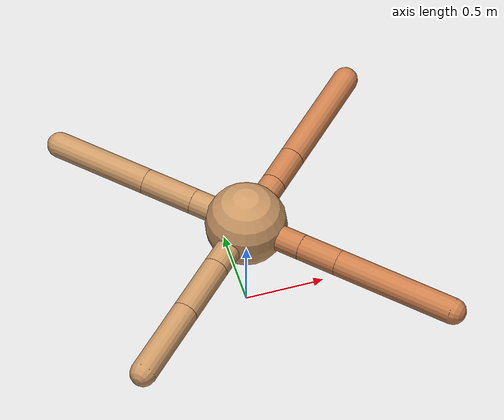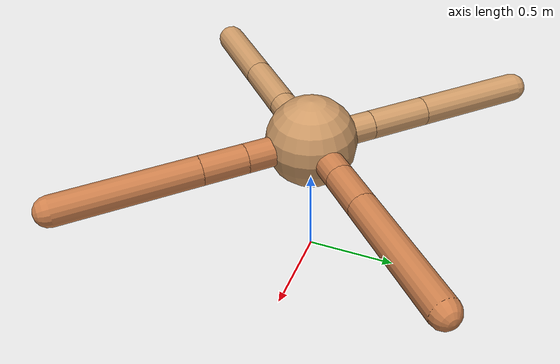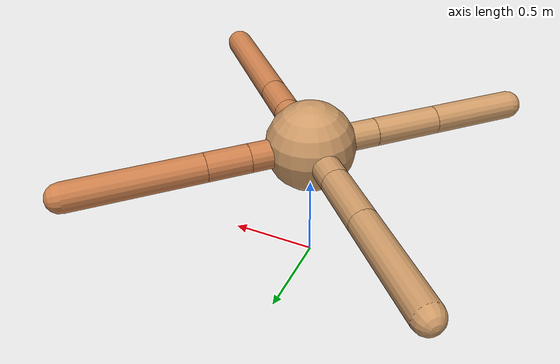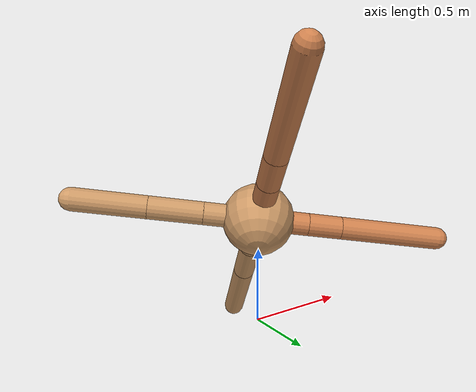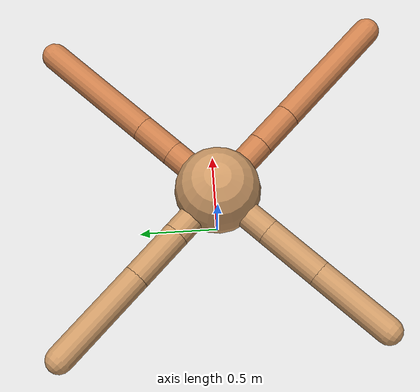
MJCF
<mujoco model="ant">
  <compiler angle="degree" coordinate="local" inertiafromgeom="true" />
  <option integrator="RK4" timestep="0.01" />
  <custom>
    <numeric data="0.0 0.0 0.55 1.0 0.0 0.0 0.0 0.0 1.0 0.0 -1.0 0.0 -1.0 0.0 1.0" name="init_qpos" />
  </custom>
  <default>
    <joint armature="1" damping="1" limited="true" />
    <geom conaffinity="0" condim="3" density="5.0" friction="1.5 0.1 0.1" margin="0.01" rgba="0.8 0.6 0.4 1" />
  </default>
  <worldbody>
    <body name="torso" pos="0 0 0.75">
      <geom name="torso_geom" pos="0 0 0" size="0.25" type="sphere" />

      <body name="front_left_leg" pos="0 0 0">
        <geom fromto="0.0 0.0 0.0 0.245749449439552 0.245749449439552 0.0" name="aux_1_geom" size="0.08" type="capsule" rgba=".8 .5 .3 1" />
        <body name="aux_1" pos="0.245749449439552 0.245749449439552 0.0">
          <joint axis="0 0 1" name="hip_1" pos="0.0 0.0 0.0" range="-40 40" type="hinge" />
          <geom fromto="0.0 0.0 0.0 0.16790515242584045 0.16790515242584045 0.0" name="left_leg_geom" size="0.08" type="capsule" rgba=".8 .5 .3 1" />
          <body pos="0.16790515242584045 0.16790515242584045 0.0" name="front_left_foot">
            <joint axis="-1 1 0" name="ankle_1" pos="0.0 0.0 0.0" range="30 100" type="hinge" />
            <geom fromto="0.0 0.0 0.0 0.5111910901542962 0.5111910901542962 0.0" name="left_ankle_geom" size="0.08" type="capsule" rgba=".8 .5 .3 1" />
          </body>
        </body>
      </body>
      <body name="front_right_leg" pos="0 0 0">
        <geom fromto="0.0 0.0 0.0 -0.251627530114827 0.251627530114827 0.0" name="aux_2_geom" size="0.08" type="capsule" />
        <body name="aux_2" pos="-0.251627530114827 0.251627530114827 0.0">
          <joint axis="0 0 1" name="hip_2" pos="0.0 0.0 0.0" range="-40 40" type="hinge" />
          <geom fromto="0.0 0.0 0.0 -0.23387449483951955 0.23387449483951955 0.0" name="right_leg_geom" size="0.08" type="capsule" />
          <body pos="-0.23387449483951955 0.23387449483951955 0.0" name="front_right_foot">
            <joint axis="1 1 0" name="ankle_2" pos="0.0 0.0 0.0" range="-100 -30" type="hinge" />
            <geom fromto="0.0 0.0 0.0 -0.43528818892509247 0.43528818892509247 0.0" name="right_ankle_geom" size="0.08" type="capsule" />
          </body>
        </body>
      </body>
      <body name="left_back_leg" pos="0 0 0">
        <geom fromto="0.0 0.0 0.0 -0.26951916998346065 -0.26951916998346065 0.0" name="aux_3_geom" size="0.08" type="capsule" />
        <body name="aux_3" pos="-0.26951916998346065 -0.26951916998346065 0.0">
          <joint axis="0 0 1" name="hip_3" pos="0.0 0.0 0.0" range="-40 40" type="hinge" />
          <geom fromto="0.0 0.0 0.0 -0.2620885541450286 -0.2620885541450286 0.0" name="back_leg_geom" size="0.08" type="capsule" />
          <body pos="-0.2620885541450286 -0.2620885541450286 0.0" name="left_back_foot">
            <joint axis="-1 1 0" name="ankle_3" pos="0.0 0.0 0.0" range="-100 -30" type="hinge" />
            <geom fromto="0.0 0.0 0.0 -0.3487363195585946 -0.3487363195585946 0.0" name="third_ankle_geom" size="0.08" type="capsule" />
          </body>
        </body>
      </body>
      <body name="right_back_leg" pos="0 0 0">
        <geom fromto="0.0 0.0 0.0 0.2679504027755369 -0.2679504027755369 0.0" name="aux_4_geom" size="0.08" type="capsule" rgba=".8 .5 .3 1" />
        <body name="aux_4" pos="0.2679504027755369 -0.2679504027755369 0.0">
          <joint axis="0 0 1" name="hip_4" pos="0.0 0.0 0.0" range="-40 40" type="hinge" />
          <geom fromto="0.0 0.0 0.0 0.17364452392717608 -0.17364452392717608 0.0" name="rightback_leg_geom" size="0.08" type="capsule" rgba=".8 .5 .3 1" />
          <body pos="0.17364452392717608 -0.17364452392717608 0.0" name="right_back_foot">
            <joint axis="1 1 0" name="ankle_4" pos="0.0 0.0 0.0" range="30 100" type="hinge" />
            <geom fromto="0.0 0.0 0.0 0.5331618220845208 -0.5331618220845208 0.0" name="fourth_ankle_geom" size="0.08" type="capsule" rgba=".8 .5 .3 1" />
          </body>
        </body>
      </body>
    </body>
  </worldbody>
  <actuator>
    <motor ctrllimited="true" ctrlrange="-1.0 1.0" joint="hip_4" gear="150" />
    <motor ctrllimited="true" ctrlrange="-1.0 1.0" joint="ankle_4" gear="150" />
    <motor ctrllimited="true" ctrlrange="-1.0 1.0" joint="hip_1" gear="150" />
    <motor ctrllimited="true" ctrlrange="-1.0 1.0" joint="ankle_1" gear="150" />
    <motor ctrllimited="true" ctrlrange="-1.0 1.0" joint="hip_2" gear="150" />
    <motor ctrllimited="true" ctrlrange="-1.0 1.0" joint="ankle_2" gear="150" />
    <motor ctrllimited="true" ctrlrange="-1.0 1.0" joint="hip_3" gear="150" />
    <motor ctrllimited="true" ctrlrange="-1.0 1.0" joint="ankle_3" gear="150" />
  </actuator>
</mujoco>
